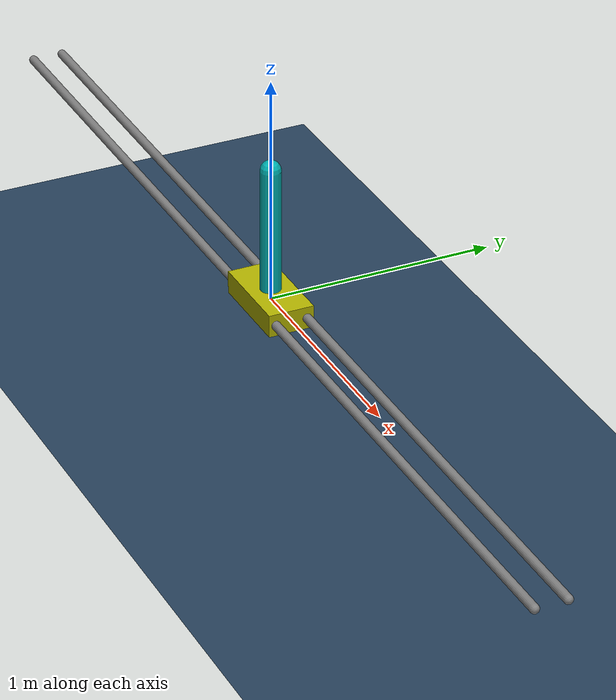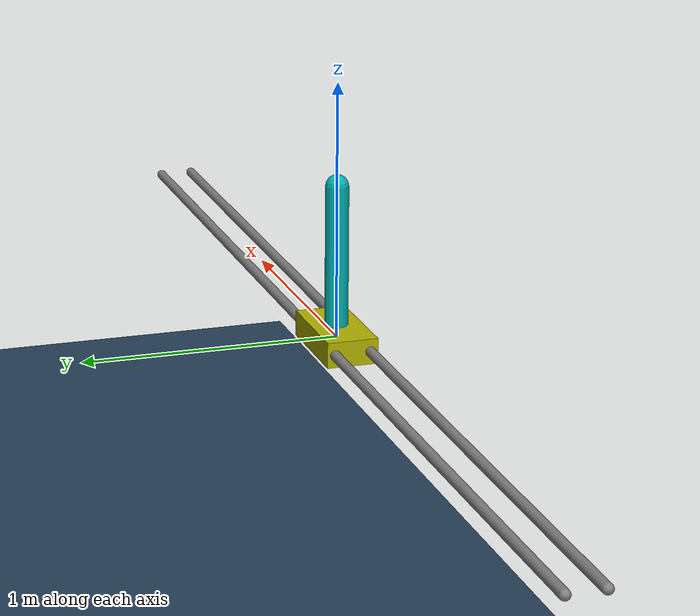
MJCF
<mujoco model='test_cartpole'>
  <compiler inertiafromgeom='true' coordinate='local'/>

  <size nkey="1"/>

  <custom>
    <numeric name="control_timestep" data="0.04" />
    <numeric name="three_numbers" data="1.0 2.0 3.0" />
  </custom>

  <option timestep='0.01'/>

  <visual>
    <map force="0.1" zfar="30"/>
    <rgba haze="0.15 0.25 0.35 1"/>
    <global offwidth="2560" offheight="1440" elevation="-20" azimuth="120"/>
  </visual>

  <asset>
    <texture type="skybox" builtin="gradient" rgb1=".3 .5 .7" rgb2="0 0 0" width="32" height="512"/>
    <texture name="body" type="cube" builtin="flat" mark="cross" width="128" height="128" rgb1="0.8 0.6 0.4" rgb2="0.8 0.6 0.4" markrgb="1 1 1" random="0.01"/>
    <material name="body" texture="body" texuniform="true" rgba="0.8 0.6 .4 1"/>
    <texture name="grid" type="2d" builtin="checker" width="512" height="512" rgb1=".1 .2 .3" rgb2=".2 .3 .4"/>
    <material name="grid" texture="grid" texrepeat="1 1" texuniform="true" reflectance=".2"/>
  </asset>

  <default>
    <joint damping='0.05' solreflimit='.08 1'/>
    <geom contype='0' friction='1 0.1 0.1'/>
  </default>

  <worldbody>
    <camera name='fixed' pos='0 -2.5 0' quat='0.707 0.707 0 0'/>
    <geom name='floor' pos='0 0 -1' size='4 4 4' type='plane' material="grid"/>
    <light name="top" pos="0 0 1" mode="fixed" diffuse=".8 .8 .8"/>
    <geom name='rail1' type='capsule' pos='0 .07 0' quat='0.707 0 0.707 0'
          size='0.02 2.4' />
    <geom name='rail2' type='capsule' pos='0 -.07 0' quat='0.707 0 0.707 0'
          size='0.02 2.4' />
    <body name='cart' pos='0 0 0'>
      <camera name='cart' pos='0 -2.5 0' quat='-1 0 0 0' />
      <joint name='slider' type='slide' limited='true' pos='0 0 0'
               axis='1 0 0' range='-2 2' />
      <geom name='cart' type='box' pos='0 0 0'
              size='0.2 0.1 0.05' rgba='0.7 0.7 0 1' />
      <site name='cart sensor' type='box' pos='0 0 0'
              size='0.2 0.1 0.05' rgba='0.7 0.7 0 0' />
      <body name='pole' pos='0 0 0'>
        <camera name='pole'  pos='0 -2.5 0' quat='0.707 0.707 0 0' />
        <joint name='hinge' type='hinge' pos='0 0 0' axis='0 1 0'/>
        <geom name='cpole' type='capsule' fromto='0 0 0 0 0 0.6'
                size='0.045 0.3' rgba='0 0.7 0.7 1' />
        <site type='sphere' size='.01' name='tip' pos='.001 0 .6'/>
      </body>
    </body>
  </worldbody>

  <actuator>
    <motor name='slide' joint='slider' gear='50' ctrllimited='true' ctrlrange='-1 1' />
  </actuator>

  <sensor>
    <accelerometer name="accelerometer" site="cart sensor"/>
    <touch name="collision" site="cart sensor"/>
  </sensor>

  <keyframe>
    <key name="hanging_down" qpos="0 1.57"/>
  </keyframe>

</mujoco>
